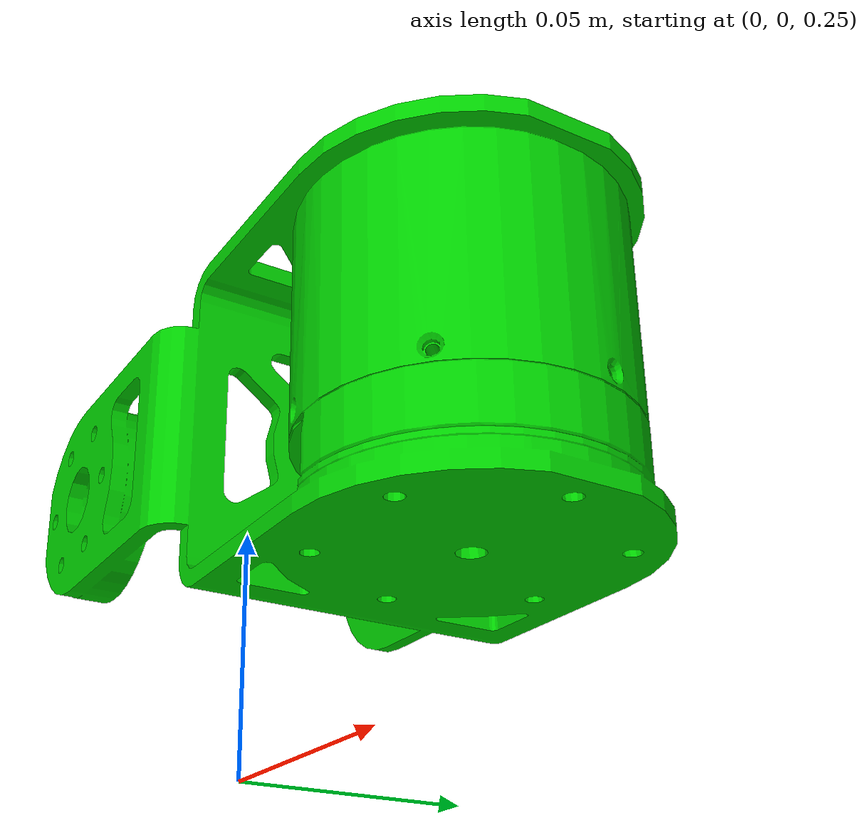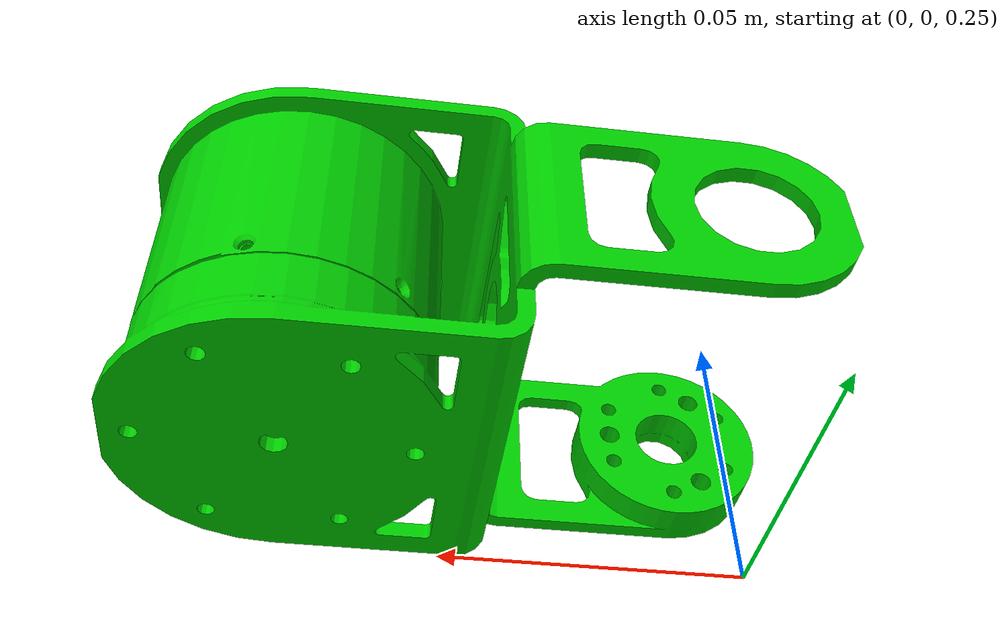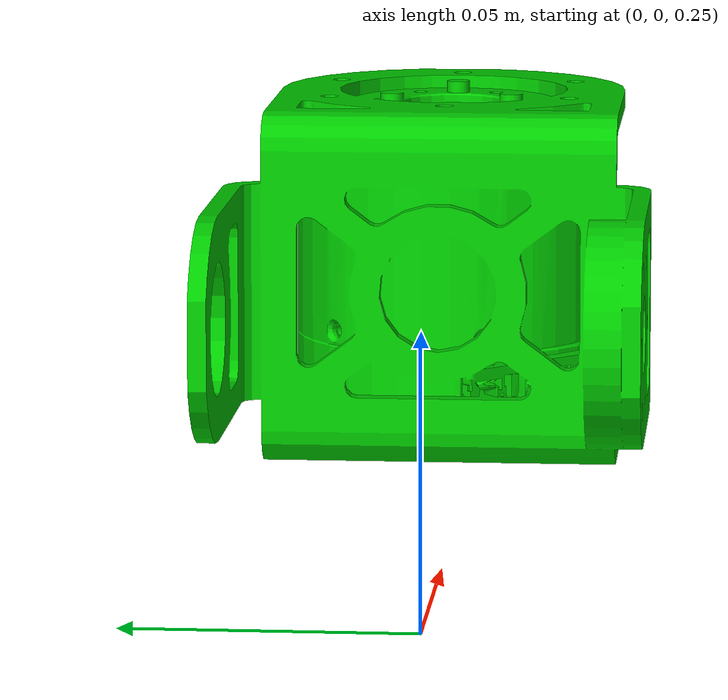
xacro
<?xml version="1.0"?>
<robot xmlns:xacro="http://www.ros.org/wiki/xacro" name="hip_link_only">

    <!-- INCLUDES                                                               -->
    <xacro:include filename="hip_link_gazebo.xacro" />

    <!-- MATERIALS                                                              -->
    <material name="green">
        <color rgba="0.0 0.8 0.0 1.0" />
    </material>

    <!-- PHYSICAL PROPERTIES                                                    -->

    <!-- Hip Link Mass -->
    <xacro:property name="mass_hip" value="0.425" />

    <!-- Hip Link Center of Mass (Inertial Frame Origin) -->
    <xacro:property name="hip_inertial_x" value="0.075" />
    <xacro:property name="hip_inertial_y" value="-0.0046750292660587" />
    <xacro:property name="hip_inertial_z" value="0.00415169396095089" />

    <!-- Hip Link Inertia Tensor (physically consistent, Izz = 0.0007) -->
    <xacro:property name="hip_ixx" value="0.00100" />
    <xacro:property name="hip_ixy" value="0.0" />
    <xacro:property name="hip_ixz" value="0.0" />
    <xacro:property name="hip_iyy" value="0.00120" />
    <xacro:property name="hip_iyz" value="0.0" />
    <xacro:property name="hip_izz" value="0.000425" />

    <!-- WORLD LINK (Fixed Root)                                                -->
    <link name="world">
    </link>

    <gazebo reference="world">
        <static>true</static>
    </gazebo>

    <!-- WORLD TO HIP JOINT (Continuous - Pendulum)                             -->
    <joint name="world_to_hip" type="continuous">
        <parent link="world" />
        <child link="hip_Link" />
        <!-- Position: 0.3m above ground, rotated 90° around X-axis -->
        <origin xyz="0 0 0.3" rpy="1.5701 0 0" />
        <!-- Rotation axis: Z-axis (pitch motion when rotated) -->
        <axis xyz="0 0 1" />
        <!-- No damping or friction for free pendulum motion -->
        <dynamics damping="0.000375" friction="0.00350" />
    </joint>

    <!-- HIP LINK                                                               -->
    <link name="hip_Link">

        <!-- Inertial Properties -->
        <inertial>
            <origin
                xyz="${hip_inertial_x} ${hip_inertial_y} ${hip_inertial_z}"
                rpy="0 0 0" />
            <mass value="${mass_hip}" />
            <inertia
                ixx="${hip_ixx}"  ixy="${hip_ixy}"  ixz="${hip_ixz}"
                                  iyy="${hip_iyy}"  iyz="${hip_iyz}"
                                                    izz="${hip_izz}" />
        </inertial>

        <!-- Visual Representation -->
        <visual>
            <origin xyz="0 0 0" rpy="0 0 0" />
            <geometry>
                <mesh filename="package://system_identification_description/meshes/hip_link_v2.STL" />
            </geometry>
            <material name="green" />
        </visual>

        <!-- Collision Geometry -->
        <collision>
            <origin xyz="0 0 0" rpy="0 0 0" />
            <geometry>
                <mesh filename="package://system_identification_description/meshes/hip_link_v2.STL" />
            </geometry>
        </collision>

    </link>

</robot>
